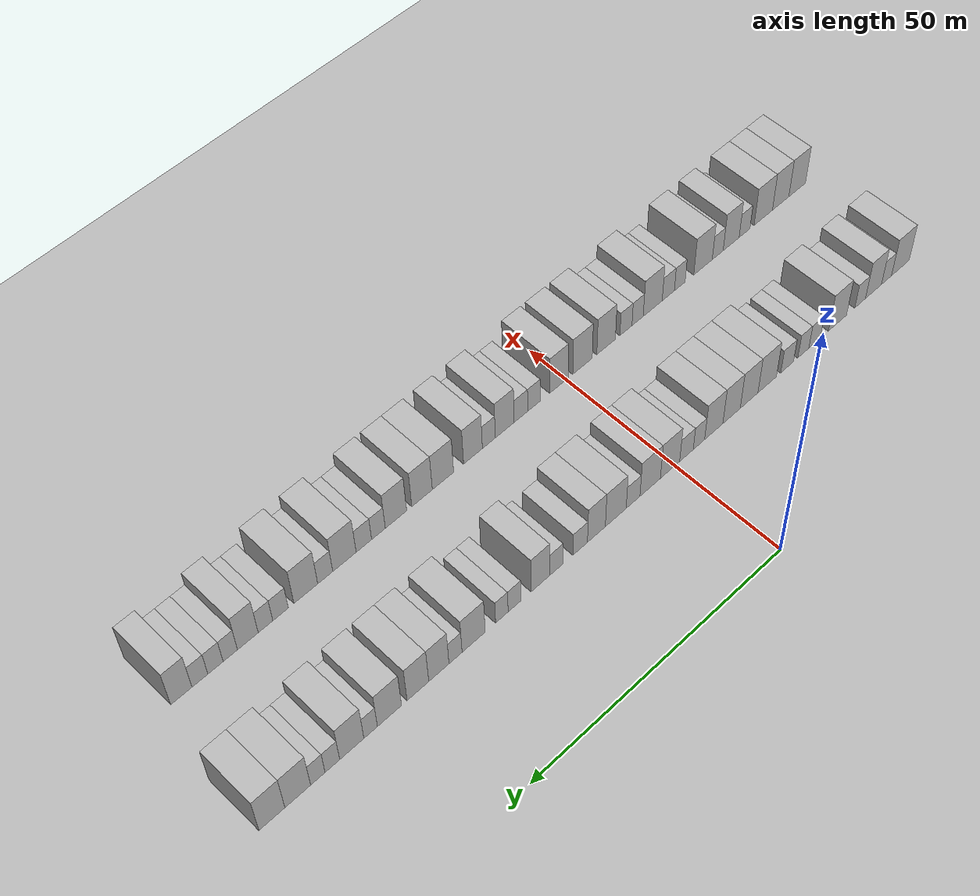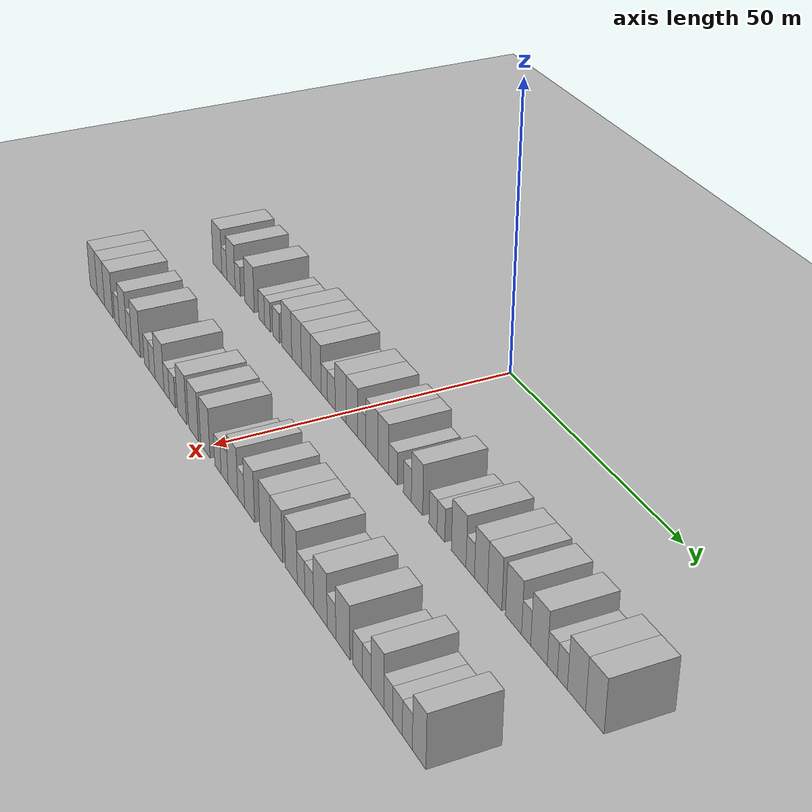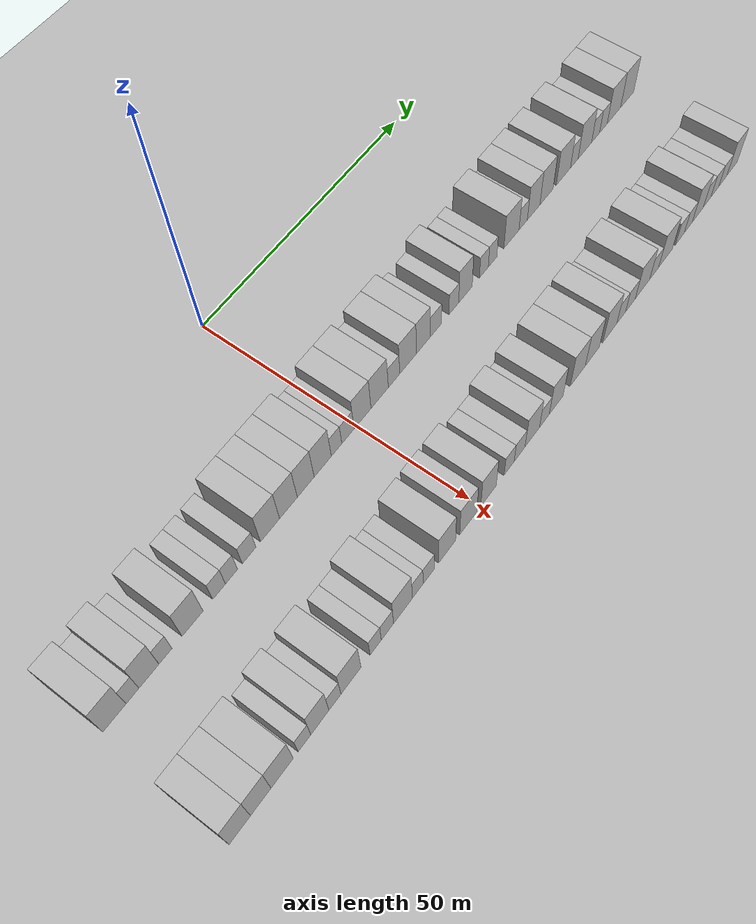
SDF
<sdf version="1.6">
 <world name="default">
  <include><name>ground_plane_1</name><uri>model://HANNAS_ground_plane</uri></include>
  <include>
   <name>ground_plane_2</name>
   <uri>model://HANNAS_ground_plane</uri>
   <pose>100 0 0  0 0 0</pose>
  </include>
  <model name="building_35">
   <static>1</static>
   <pose>25.0000 -51.8202 0 0.000000 0.000000 0.000000</pose>
   <link name="link">
    <pose>0 0 4.50 0 0 0</pose>
    <collision name="collision"><geometry><box><size>10.0000 4.3888 9.0000</size></box></geometry></collision>
    <visual name="visual">
     <cast_shadows>0</cast_shadows>
     <geometry><box><size>10.0000 4.3888 9.0000</size></box></geometry>
     <material>
      <script>
       <uri>model://HANNAS_wall/materials/scripts</uri>
       <uri>model://HANNAS_wall/materials/textures</uri>
       <name>vrc/HANNAS_wall</name>
      </script>
     </material>
    </visual>
   </link>
  </model>
  <model name="building_36">
   <static>1</static>
   <pose>25.0000 -48.3921 0 0.000000 0.000000 0.000000</pose>
   <link name="link">
    <pose>0 0 3.00 0 0 0</pose>
    <collision name="collision"><geometry><box><size>10.0000 2.4674 6.0000</size></box></geometry></collision>
    <visual name="visual">
     <cast_shadows>0</cast_shadows>
     <geometry><box><size>10.0000 2.4674 6.0000</size></box></geometry>
     <material>
      <script>
       <uri>model://HANNAS_wall/materials/scripts</uri>
       <uri>model://HANNAS_wall/materials/textures</uri>
       <name>vrc/HANNAS_wall</name>
      </script>
     </material>
    </visual>
   </link>
  </model>
  <model name="building_37">
   <static>1</static>
   <pose>25.0000 -45.2112 0 0.000000 0.000000 0.000000</pose>
   <link name="link">
    <pose>0 0 4.50 0 0 0</pose>
    <collision name="collision"><geometry><box><size>10.0000 3.8944 9.0000</size></box></geometry></collision>
    <visual name="visual">
     <cast_shadows>0</cast_shadows>
     <geometry><box><size>10.0000 3.8944 9.0000</size></box></geometry>
     <material>
      <script>
       <uri>model://HANNAS_wall/materials/scripts</uri>
       <uri>model://HANNAS_wall/materials/textures</uri>
       <name>vrc/HANNAS_wall</name>
      </script>
     </material>
    </visual>
   </link>
  </model>
  <model name="building_38">
   <static>1</static>
   <pose>25.0000 -41.9755 0 0.000000 0.000000 0.000000</pose>
   <link name="link">
    <pose>0 0 3.00 0 0 0</pose>
    <collision name="collision"><geometry><box><size>10.0000 2.5769 6.0000</size></box></geometry></collision>
    <visual name="visual">
     <cast_shadows>0</cast_shadows>
     <geometry><box><size>10.0000 2.5769 6.0000</size></box></geometry>
     <material>
      <script>
       <uri>model://HANNAS_wall/materials/scripts</uri>
       <uri>model://HANNAS_wall/materials/textures</uri>
       <name>vrc/HANNAS_wall</name>
      </script>
     </material>
    </visual>
   </link>
  </model>
  <model name="building_39">
   <static>1</static>
   <pose>25.0000 -36.5479 0 0.000000 0.000000 0.000000</pose>
   <link name="link">
    <pose>0 0 4.50 0 0 0</pose>
    <collision name="collision"><geometry><box><size>10.0000 4.2784 9.0000</size></box></geometry></collision>
    <visual name="visual">
     <cast_shadows>0</cast_shadows>
     <geometry><box><size>10.0000 4.2784 9.0000</size></box></geometry>
     <material>
      <script>
       <uri>model://HANNAS_wall/materials/scripts</uri>
       <uri>model://HANNAS_wall/materials/textures</uri>
       <name>vrc/HANNAS_wall</name>
      </script>
     </material>
    </visual>
   </link>
  </model>
  <model name="building_40">
   <static>1</static>
   <pose>25.0000 -31.0779 0 0.000000 0.000000 0.000000</pose>
   <link name="link">
    <pose>0 0 3.00 0 0 0</pose>
    <collision name="collision"><geometry><box><size>10.0000 2.6616 6.0000</size></box></geometry></collision>
    <visual name="visual">
     <cast_shadows>0</cast_shadows>
     <geometry><box><size>10.0000 2.6616 6.0000</size></box></geometry>
     <material>
      <script>
       <uri>model://HANNAS_wall/materials/scripts</uri>
       <uri>model://HANNAS_wall/materials/textures</uri>
       <name>vrc/HANNAS_wall</name>
      </script>
     </material>
    </visual>
   </link>
  </model>
  <model name="building_41">
   <static>1</static>
   <pose>25.0000 -28.4671 0 0.000000 0.000000 0.000000</pose>
   <link name="link">
    <pose>0 0 3.00 0 0 0</pose>
    <collision name="collision"><geometry><box><size>10.0000 2.5600 6.0000</size></box></geometry></collision>
    <visual name="visual">
     <cast_shadows>0</cast_shadows>
     <geometry><box><size>10.0000 2.5600 6.0000</size></box></geometry>
     <material>
      <script>
       <uri>model://HANNAS_wall/materials/scripts</uri>
       <uri>model://HANNAS_wall/materials/textures</uri>
       <name>vrc/HANNAS_wall</name>
      </script>
     </material>
    </visual>
   </link>
  </model>
  <model name="building_42">
   <static>1</static>
   <pose>25.0000 -24.7197 0 0.000000 0.000000 0.000000</pose>
   <link name="link">
    <pose>0 0 3.00 0 0 0</pose>
    <collision name="collision"><geometry><box><size>10.0000 2.9350 6.0000</size></box></geometry></collision>
    <visual name="visual">
     <cast_shadows>0</cast_shadows>
     <geometry><box><size>10.0000 2.9350 6.0000</size></box></geometry>
     <material>
      <script>
       <uri>model://HANNAS_wall/materials/scripts</uri>
       <uri>model://HANNAS_wall/materials/textures</uri>
       <name>vrc/HANNAS_wall</name>
      </script>
     </material>
    </visual>
   </link>
  </model>
  <model name="building_43">
   <static>1</static>
   <pose>25.0000 -20.1463 0 0.000000 0.000000 0.000000</pose>
   <link name="link">
    <pose>0 0 4.50 0 0 0</pose>
    <collision name="collision"><geometry><box><size>10.0000 4.2118 9.0000</size></box></geometry></collision>
    <visual name="visual">
     <cast_shadows>0</cast_shadows>
     <geometry><box><size>10.0000 4.2118 9.0000</size></box></geometry>
     <material>
      <script>
       <uri>model://HANNAS_wall/materials/scripts</uri>
       <uri>model://HANNAS_wall/materials/textures</uri>
       <name>vrc/HANNAS_wall</name>
      </script>
     </material>
    </visual>
   </link>
  </model>
  <model name="building_44">
   <static>1</static>
   <pose>25.0000 -16.0506 0 0.000000 0.000000 0.000000</pose>
   <link name="link">
    <pose>0 0 4.50 0 0 0</pose>
    <collision name="collision"><geometry><box><size>10.0000 3.9796 9.0000</size></box></geometry></collision>
    <visual name="visual">
     <cast_shadows>0</cast_shadows>
     <geometry><box><size>10.0000 3.9796 9.0000</size></box></geometry>
     <material>
      <script>
       <uri>model://HANNAS_wall/materials/scripts</uri>
       <uri>model://HANNAS_wall/materials/textures</uri>
       <name>vrc/HANNAS_wall</name>
      </script>
     </material>
    </visual>
   </link>
  </model>
  <model name="building_45">
   <static>1</static>
   <pose>25.0000 -12.1301 0 0.000000 0.000000 0.000000</pose>
   <link name="link">
    <pose>0 0 4.50 0 0 0</pose>
    <collision name="collision"><geometry><box><size>10.0000 3.8613 9.0000</size></box></geometry></collision>
    <visual name="visual">
     <cast_shadows>0</cast_shadows>
     <geometry><box><size>10.0000 3.8613 9.0000</size></box></geometry>
     <material>
      <script>
       <uri>model://HANNAS_wall/materials/scripts</uri>
       <uri>model://HANNAS_wall/materials/textures</uri>
       <name>vrc/HANNAS_wall</name>
      </script>
     </material>
    </visual>
   </link>
  </model>
  <model name="building_46">
   <static>1</static>
   <pose>25.0000 -8.1956 0 0.000000 0.000000 0.000000</pose>
   <link name="link">
    <pose>0 0 4.50 0 0 0</pose>
    <collision name="collision"><geometry><box><size>10.0000 4.0076 9.0000</size></box></geometry></collision>
    <visual name="visual">
     <cast_shadows>0</cast_shadows>
     <geometry><box><size>10.0000 4.0076 9.0000</size></box></geometry>
     <material>
      <script>
       <uri>model://HANNAS_wall/materials/scripts</uri>
       <uri>model://HANNAS_wall/materials/textures</uri>
       <name>vrc/HANNAS_wall</name>
      </script>
     </material>
    </visual>
   </link>
  </model>
  <model name="building_47">
   <static>1</static>
   <pose>25.0000 -4.9509 0 0.000000 0.000000 0.000000</pose>
   <link name="link">
    <pose>0 0 3.00 0 0 0</pose>
    <collision name="collision"><geometry><box><size>10.0000 2.4819 6.0000</size></box></geometry></collision>
    <visual name="visual">
     <cast_shadows>0</cast_shadows>
     <geometry><box><size>10.0000 2.4819 6.0000</size></box></geometry>
     <material>
      <script>
       <uri>model://HANNAS_wall/materials/scripts</uri>
       <uri>model://HANNAS_wall/materials/textures</uri>
       <name>vrc/HANNAS_wall</name>
      </script>
     </material>
    </visual>
   </link>
  </model>
  <model name="building_48">
   <static>1</static>
   <pose>25.0000 -2.2434 0 0.000000 0.000000 0.000000</pose>
   <link name="link">
    <pose>0 0 3.00 0 0 0</pose>
    <collision name="collision"><geometry><box><size>10.0000 2.9330 6.0000</size></box></geometry></collision>
    <visual name="visual">
     <cast_shadows>0</cast_shadows>
     <geometry><box><size>10.0000 2.9330 6.0000</size></box></geometry>
     <material>
      <script>
       <uri>model://HANNAS_wall/materials/scripts</uri>
       <uri>model://HANNAS_wall/materials/textures</uri>
       <name>vrc/HANNAS_wall</name>
      </script>
     </material>
    </visual>
   </link>
  </model>
  <model name="building_49">
   <static>1</static>
   <pose>25.0000 1.2907 0 0.000000 0.000000 0.000000</pose>
   <link name="link">
    <pose>0 0 4.50 0 0 0</pose>
    <collision name="collision"><geometry><box><size>10.0000 4.1353 9.0000</size></box></geometry></collision>
    <visual name="visual">
     <cast_shadows>0</cast_shadows>
     <geometry><box><size>10.0000 4.1353 9.0000</size></box></geometry>
     <material>
      <script>
       <uri>model://HANNAS_wall/materials/scripts</uri>
       <uri>model://HANNAS_wall/materials/textures</uri>
       <name>vrc/HANNAS_wall</name>
      </script>
     </material>
    </visual>
   </link>
  </model>
  <model name="building_50">
   <static>1</static>
   <pose>25.0000 5.5129 0 0.000000 0.000000 0.000000</pose>
   <link name="link">
    <pose>0 0 4.50 0 0 0</pose>
    <collision name="collision"><geometry><box><size>10.0000 4.3091 9.0000</size></box></geometry></collision>
    <visual name="visual">
     <cast_shadows>0</cast_shadows>
     <geometry><box><size>10.0000 4.3091 9.0000</size></box></geometry>
     <material>
      <script>
       <uri>model://HANNAS_wall/materials/scripts</uri>
       <uri>model://HANNAS_wall/materials/textures</uri>
       <name>vrc/HANNAS_wall</name>
      </script>
     </material>
    </visual>
   </link>
  </model>
  <model name="building_51">
   <static>1</static>
   <pose>25.0000 9.1079 0 0.000000 0.000000 0.000000</pose>
   <link name="link">
    <pose>0 0 3.00 0 0 0</pose>
    <collision name="collision"><geometry><box><size>10.0000 2.8809 6.0000</size></box></geometry></collision>
    <visual name="visual">
     <cast_shadows>0</cast_shadows>
     <geometry><box><size>10.0000 2.8809 6.0000</size></box></geometry>
     <material>
      <script>
       <uri>model://HANNAS_wall/materials/scripts</uri>
       <uri>model://HANNAS_wall/materials/textures</uri>
       <name>vrc/HANNAS_wall</name>
      </script>
     </material>
    </visual>
   </link>
  </model>
  <model name="building_52">
   <static>1</static>
   <pose>25.0000 12.6983 0 0.000000 0.000000 0.000000</pose>
   <link name="link">
    <pose>0 0 4.50 0 0 0</pose>
    <collision name="collision"><geometry><box><size>10.0000 4.3001 9.0000</size></box></geometry></collision>
    <visual name="visual">
     <cast_shadows>0</cast_shadows>
     <geometry><box><size>10.0000 4.3001 9.0000</size></box></geometry>
     <material>
      <script>
       <uri>model://HANNAS_wall/materials/scripts</uri>
       <uri>model://HANNAS_wall/materials/textures</uri>
       <name>vrc/HANNAS_wall</name>
      </script>
     </material>
    </visual>
   </link>
  </model>
  <model name="building_53">
   <static>1</static>
   <pose>25.0000 16.6781 0 0.000000 0.000000 0.000000</pose>
   <link name="link">
    <pose>0 0 4.50 0 0 0</pose>
    <collision name="collision"><geometry><box><size>10.0000 3.6595 9.0000</size></box></geometry></collision>
    <visual name="visual">
     <cast_shadows>0</cast_shadows>
     <geometry><box><size>10.0000 3.6595 9.0000</size></box></geometry>
     <material>
      <script>
       <uri>model://HANNAS_wall/materials/scripts</uri>
       <uri>model://HANNAS_wall/materials/textures</uri>
       <name>vrc/HANNAS_wall</name>
      </script>
     </material>
    </visual>
   </link>
  </model>
  <model name="building_54">
   <static>1</static>
   <pose>25.0000 19.9686 0 0.000000 0.000000 0.000000</pose>
   <link name="link">
    <pose>0 0 3.00 0 0 0</pose>
    <collision name="collision"><geometry><box><size>10.0000 2.9214 6.0000</size></box></geometry></collision>
    <visual name="visual">
     <cast_shadows>0</cast_shadows>
     <geometry><box><size>10.0000 2.9214 6.0000</size></box></geometry>
     <material>
      <script>
       <uri>model://HANNAS_wall/materials/scripts</uri>
       <uri>model://HANNAS_wall/materials/textures</uri>
       <name>vrc/HANNAS_wall</name>
      </script>
     </material>
    </visual>
   </link>
  </model>
  <model name="building_55">
   <static>1</static>
   <pose>25.0000 24.7430 0 0.000000 0.000000 0.000000</pose>
   <link name="link">
    <pose>0 0 3.00 0 0 0</pose>
    <collision name="collision"><geometry><box><size>10.0000 2.6274 6.0000</size></box></geometry></collision>
    <visual name="visual">
     <cast_shadows>0</cast_shadows>
     <geometry><box><size>10.0000 2.6274 6.0000</size></box></geometry>
     <material>
      <script>
       <uri>model://HANNAS_wall/materials/scripts</uri>
       <uri>model://HANNAS_wall/materials/textures</uri>
       <name>vrc/HANNAS_wall</name>
      </script>
     </material>
    </visual>
   </link>
  </model>
  <model name="building_56">
   <static>1</static>
   <pose>25.0000 27.9003 0 0.000000 0.000000 0.000000</pose>
   <link name="link">
    <pose>0 0 4.50 0 0 0</pose>
    <collision name="collision"><geometry><box><size>10.0000 3.6870 9.0000</size></box></geometry></collision>
    <visual name="visual">
     <cast_shadows>0</cast_shadows>
     <geometry><box><size>10.0000 3.6870 9.0000</size></box></geometry>
     <material>
      <script>
       <uri>model://HANNAS_wall/materials/scripts</uri>
       <uri>model://HANNAS_wall/materials/textures</uri>
       <name>vrc/HANNAS_wall</name>
      </script>
     </material>
    </visual>
   </link>
  </model>
  <model name="building_57">
   <static>1</static>
   <pose>25.0000 32.9931 0 0.000000 0.000000 0.000000</pose>
   <link name="link">
    <pose>0 0 3.00 0 0 0</pose>
    <collision name="collision"><geometry><box><size>10.0000 2.4987 6.0000</size></box></geometry></collision>
    <visual name="visual">
     <cast_shadows>0</cast_shadows>
     <geometry><box><size>10.0000 2.4987 6.0000</size></box></geometry>
     <material>
      <script>
       <uri>model://HANNAS_wall/materials/scripts</uri>
       <uri>model://HANNAS_wall/materials/textures</uri>
       <name>vrc/HANNAS_wall</name>
      </script>
     </material>
    </visual>
   </link>
  </model>
  <model name="building_58">
   <static>1</static>
   <pose>25.0000 35.4506 0 0.000000 0.000000 0.000000</pose>
   <link name="link">
    <pose>0 0 3.00 0 0 0</pose>
    <collision name="collision"><geometry><box><size>10.0000 2.4164 6.0000</size></box></geometry></collision>
    <visual name="visual">
     <cast_shadows>0</cast_shadows>
     <geometry><box><size>10.0000 2.4164 6.0000</size></box></geometry>
     <material>
      <script>
       <uri>model://HANNAS_wall/materials/scripts</uri>
       <uri>model://HANNAS_wall/materials/textures</uri>
       <name>vrc/HANNAS_wall</name>
      </script>
     </material>
    </visual>
   </link>
  </model>
  <model name="building_59">
   <static>1</static>
   <pose>25.0000 40.8483 0 0.000000 0.000000 0.000000</pose>
   <link name="link">
    <pose>0 0 4.50 0 0 0</pose>
    <collision name="collision"><geometry><box><size>10.0000 4.3790 9.0000</size></box></geometry></collision>
    <visual name="visual">
     <cast_shadows>0</cast_shadows>
     <geometry><box><size>10.0000 4.3790 9.0000</size></box></geometry>
     <material>
      <script>
       <uri>model://HANNAS_wall/materials/scripts</uri>
       <uri>model://HANNAS_wall/materials/textures</uri>
       <name>vrc/HANNAS_wall</name>
      </script>
     </material>
    </visual>
   </link>
  </model>
  <model name="building_60">
   <static>1</static>
   <pose>25.0000 44.2669 0 0.000000 0.000000 0.000000</pose>
   <link name="link">
    <pose>0 0 3.00 0 0 0</pose>
    <collision name="collision"><geometry><box><size>10.0000 2.4583 6.0000</size></box></geometry></collision>
    <visual name="visual">
     <cast_shadows>0</cast_shadows>
     <geometry><box><size>10.0000 2.4583 6.0000</size></box></geometry>
     <material>
      <script>
       <uri>model://HANNAS_wall/materials/scripts</uri>
       <uri>model://HANNAS_wall/materials/textures</uri>
       <name>vrc/HANNAS_wall</name>
      </script>
     </material>
    </visual>
   </link>
  </model>
  <model name="building_61">
   <static>1</static>
   <pose>25.0000 47.3763 0 0.000000 0.000000 0.000000</pose>
   <link name="link">
    <pose>0 0 4.50 0 0 0</pose>
    <collision name="collision"><geometry><box><size>10.0000 3.7605 9.0000</size></box></geometry></collision>
    <visual name="visual">
     <cast_shadows>0</cast_shadows>
     <geometry><box><size>10.0000 3.7605 9.0000</size></box></geometry>
     <material>
      <script>
       <uri>model://HANNAS_wall/materials/scripts</uri>
       <uri>model://HANNAS_wall/materials/textures</uri>
       <name>vrc/HANNAS_wall</name>
      </script>
     </material>
    </visual>
   </link>
  </model>
  <model name="building_62">
   <static>1</static>
   <pose>25.0000 51.2478 0 0.000000 0.000000 0.000000</pose>
   <link name="link">
    <pose>0 0 4.50 0 0 0</pose>
    <collision name="collision"><geometry><box><size>10.0000 3.9825 9.0000</size></box></geometry></collision>
    <visual name="visual">
     <cast_shadows>0</cast_shadows>
     <geometry><box><size>10.0000 3.9825 9.0000</size></box></geometry>
     <material>
      <script>
       <uri>model://HANNAS_wall/materials/scripts</uri>
       <uri>model://HANNAS_wall/materials/textures</uri>
       <name>vrc/HANNAS_wall</name>
      </script>
     </material>
    </visual>
   </link>
  </model>
  <model name="building_63">
   <static>1</static>
   <pose>25.0000 56.4181 0 0.000000 0.000000 0.000000</pose>
   <link name="link">
    <pose>0 0 4.50 0 0 0</pose>
    <collision name="collision"><geometry><box><size>10.0000 4.3580 9.0000</size></box></geometry></collision>
    <visual name="visual">
     <cast_shadows>0</cast_shadows>
     <geometry><box><size>10.0000 4.3580 9.0000</size></box></geometry>
     <material>
      <script>
       <uri>model://HANNAS_wall/materials/scripts</uri>
       <uri>model://HANNAS_wall/materials/textures</uri>
       <name>vrc/HANNAS_wall</name>
      </script>
     </material>
    </visual>
   </link>
  </model>
  <model name="building_64">
   <static>1</static>
   <pose>25.0000 59.8069 0 0.000000 0.000000 0.000000</pose>
   <link name="link">
    <pose>0 0 3.00 0 0 0</pose>
    <collision name="collision"><geometry><box><size>10.0000 2.4197 6.0000</size></box></geometry></collision>
    <visual name="visual">
     <cast_shadows>0</cast_shadows>
     <geometry><box><size>10.0000 2.4197 6.0000</size></box></geometry>
     <material>
      <script>
       <uri>model://HANNAS_wall/materials/scripts</uri>
       <uri>model://HANNAS_wall/materials/textures</uri>
       <name>vrc/HANNAS_wall</name>
      </script>
     </material>
    </visual>
   </link>
  </model>
  <model name="building_65">
   <static>1</static>
   <pose>25.0000 63.1576 0 0.000000 0.000000 0.000000</pose>
   <link name="link">
    <pose>0 0 4.50 0 0 0</pose>
    <collision name="collision"><geometry><box><size>10.0000 4.2817 9.0000</size></box></geometry></collision>
    <visual name="visual">
     <cast_shadows>0</cast_shadows>
     <geometry><box><size>10.0000 4.2817 9.0000</size></box></geometry>
     <material>
      <script>
       <uri>model://HANNAS_wall/materials/scripts</uri>
       <uri>model://HANNAS_wall/materials/textures</uri>
       <name>vrc/HANNAS_wall</name>
      </script>
     </material>
    </visual>
   </link>
  </model>
  <model name="building_66">
   <static>1</static>
   <pose>25.0000 66.5756 0 0.000000 0.000000 0.000000</pose>
   <link name="link">
    <pose>0 0 3.00 0 0 0</pose>
    <collision name="collision"><geometry><box><size>10.0000 2.5543 6.0000</size></box></geometry></collision>
    <visual name="visual">
     <cast_shadows>0</cast_shadows>
     <geometry><box><size>10.0000 2.5543 6.0000</size></box></geometry>
     <material>
      <script>
       <uri>model://HANNAS_wall/materials/scripts</uri>
       <uri>model://HANNAS_wall/materials/textures</uri>
       <name>vrc/HANNAS_wall</name>
      </script>
     </material>
    </visual>
   </link>
  </model>
  <model name="building_67">
   <static>1</static>
   <pose>25.0000 69.1060 0 0.000000 0.000000 0.000000</pose>
   <link name="link">
    <pose>0 0 3.00 0 0 0</pose>
    <collision name="collision"><geometry><box><size>10.0000 2.5065 6.0000</size></box></geometry></collision>
    <visual name="visual">
     <cast_shadows>0</cast_shadows>
     <geometry><box><size>10.0000 2.5065 6.0000</size></box></geometry>
     <material>
      <script>
       <uri>model://HANNAS_wall/materials/scripts</uri>
       <uri>model://HANNAS_wall/materials/textures</uri>
       <name>vrc/HANNAS_wall</name>
      </script>
     </material>
    </visual>
   </link>
  </model>
  <model name="building_68">
   <static>1</static>
   <pose>25.0000 72.5663 0 0.000000 0.000000 0.000000</pose>
   <link name="link">
    <pose>0 0 4.50 0 0 0</pose>
    <collision name="collision"><geometry><box><size>10.0000 4.4142 9.0000</size></box></geometry></collision>
    <visual name="visual">
     <cast_shadows>0</cast_shadows>
     <geometry><box><size>10.0000 4.4142 9.0000</size></box></geometry>
     <material>
      <script>
       <uri>model://HANNAS_wall/materials/scripts</uri>
       <uri>model://HANNAS_wall/materials/textures</uri>
       <name>vrc/HANNAS_wall</name>
      </script>
     </material>
    </visual>
   </link>
  </model>
  <model name="building_69">
   <static>1</static>
   <pose>25.0000 76.9699 0 0.000000 0.000000 0.000000</pose>
   <link name="link">
    <pose>0 0 4.50 0 0 0</pose>
    <collision name="collision"><geometry><box><size>10.0000 4.3930 9.0000</size></box></geometry></collision>
    <visual name="visual">
     <cast_shadows>0</cast_shadows>
     <geometry><box><size>10.0000 4.3930 9.0000</size></box></geometry>
     <material>
      <script>
       <uri>model://HANNAS_wall/materials/scripts</uri>
       <uri>model://HANNAS_wall/materials/textures</uri>
       <name>vrc/HANNAS_wall</name>
      </script>
     </material>
    </visual>
   </link>
  </model>
  <model name="building_141">
   <static>1</static>
   <pose>47.0000 -52.9447 0 0.000000 0.000000 0.000000</pose>
   <link name="link">
    <pose>0 0 4.50 0 0 0</pose>
    <collision name="collision"><geometry><box><size>10.0000 4.1291 9.0000</size></box></geometry></collision>
    <visual name="visual">
     <cast_shadows>0</cast_shadows>
     <geometry><box><size>10.0000 4.1291 9.0000</size></box></geometry>
     <material>
      <script>
       <uri>model://HANNAS_wall/materials/scripts</uri>
       <uri>model://HANNAS_wall/materials/textures</uri>
       <name>vrc/HANNAS_wall</name>
      </script>
     </material>
    </visual>
   </link>
  </model>
  <model name="building_142">
   <static>1</static>
   <pose>47.0000 -48.8727 0 0.000000 0.000000 0.000000</pose>
   <link name="link">
    <pose>0 0 4.50 0 0 0</pose>
    <collision name="collision"><geometry><box><size>10.0000 4.0148 9.0000</size></box></geometry></collision>
    <visual name="visual">
     <cast_shadows>0</cast_shadows>
     <geometry><box><size>10.0000 4.0148 9.0000</size></box></geometry>
     <material>
      <script>
       <uri>model://HANNAS_wall/materials/scripts</uri>
       <uri>model://HANNAS_wall/materials/textures</uri>
       <name>vrc/HANNAS_wall</name>
      </script>
     </material>
    </visual>
   </link>
  </model>
  <model name="building_143">
   <static>1</static>
   <pose>47.0000 -44.6449 0 0.000000 0.000000 0.000000</pose>
   <link name="link">
    <pose>0 0 4.50 0 0 0</pose>
    <collision name="collision"><geometry><box><size>10.0000 4.4408 9.0000</size></box></geometry></collision>
    <visual name="visual">
     <cast_shadows>0</cast_shadows>
     <geometry><box><size>10.0000 4.4408 9.0000</size></box></geometry>
     <material>
      <script>
       <uri>model://HANNAS_wall/materials/scripts</uri>
       <uri>model://HANNAS_wall/materials/textures</uri>
       <name>vrc/HANNAS_wall</name>
      </script>
     </material>
    </visual>
   </link>
  </model>
  <model name="building_144">
   <static>1</static>
   <pose>47.0000 -40.1276 0 0.000000 0.000000 0.000000</pose>
   <link name="link">
    <pose>0 0 3.00 0 0 0</pose>
    <collision name="collision"><geometry><box><size>10.0000 2.5938 6.0000</size></box></geometry></collision>
    <visual name="visual">
     <cast_shadows>0</cast_shadows>
     <geometry><box><size>10.0000 2.5938 6.0000</size></box></geometry>
     <material>
      <script>
       <uri>model://HANNAS_wall/materials/scripts</uri>
       <uri>model://HANNAS_wall/materials/textures</uri>
       <name>vrc/HANNAS_wall</name>
      </script>
     </material>
    </visual>
   </link>
  </model>
  <model name="building_145">
   <static>1</static>
   <pose>47.0000 -36.9353 0 0.000000 0.000000 0.000000</pose>
   <link name="link">
    <pose>0 0 4.50 0 0 0</pose>
    <collision name="collision"><geometry><box><size>10.0000 3.7909 9.0000</size></box></geometry></collision>
    <visual name="visual">
     <cast_shadows>0</cast_shadows>
     <geometry><box><size>10.0000 3.7909 9.0000</size></box></geometry>
     <material>
      <script>
       <uri>model://HANNAS_wall/materials/scripts</uri>
       <uri>model://HANNAS_wall/materials/textures</uri>
       <name>vrc/HANNAS_wall</name>
      </script>
     </material>
    </visual>
   </link>
  </model>
  <model name="building_146">
   <static>1</static>
   <pose>47.0000 -33.7559 0 0.000000 0.000000 0.000000</pose>
   <link name="link">
    <pose>0 0 3.00 0 0 0</pose>
    <collision name="collision"><geometry><box><size>10.0000 2.5678 6.0000</size></box></geometry></collision>
    <visual name="visual">
     <cast_shadows>0</cast_shadows>
     <geometry><box><size>10.0000 2.5678 6.0000</size></box></geometry>
     <material>
      <script>
       <uri>model://HANNAS_wall/materials/scripts</uri>
       <uri>model://HANNAS_wall/materials/textures</uri>
       <name>vrc/HANNAS_wall</name>
      </script>
     </material>
    </visual>
   </link>
  </model>
  <model name="building_147">
   <static>1</static>
   <pose>47.0000 -30.3188 0 0.000000 0.000000 0.000000</pose>
   <link name="link">
    <pose>0 0 4.50 0 0 0</pose>
    <collision name="collision"><geometry><box><size>10.0000 4.3065 9.0000</size></box></geometry></collision>
    <visual name="visual">
     <cast_shadows>0</cast_shadows>
     <geometry><box><size>10.0000 4.3065 9.0000</size></box></geometry>
     <material>
      <script>
       <uri>model://HANNAS_wall/materials/scripts</uri>
       <uri>model://HANNAS_wall/materials/textures</uri>
       <name>vrc/HANNAS_wall</name>
      </script>
     </material>
    </visual>
   </link>
  </model>
  <model name="building_148">
   <static>1</static>
   <pose>47.0000 -24.9301 0 0.000000 0.000000 0.000000</pose>
   <link name="link">
    <pose>0 0 3.00 0 0 0</pose>
    <collision name="collision"><geometry><box><size>10.0000 2.4707 6.0000</size></box></geometry></collision>
    <visual name="visual">
     <cast_shadows>0</cast_shadows>
     <geometry><box><size>10.0000 2.4707 6.0000</size></box></geometry>
     <material>
      <script>
       <uri>model://HANNAS_wall/materials/scripts</uri>
       <uri>model://HANNAS_wall/materials/textures</uri>
       <name>vrc/HANNAS_wall</name>
      </script>
     </material>
    </visual>
   </link>
  </model>
  <model name="building_149">
   <static>1</static>
   <pose>47.0000 -22.3073 0 0.000000 0.000000 0.000000</pose>
   <link name="link">
    <pose>0 0 3.00 0 0 0</pose>
    <collision name="collision"><geometry><box><size>10.0000 2.7750 6.0000</size></box></geometry></collision>
    <visual name="visual">
     <cast_shadows>0</cast_shadows>
     <geometry><box><size>10.0000 2.7750 6.0000</size></box></geometry>
     <material>
      <script>
       <uri>model://HANNAS_wall/materials/scripts</uri>
       <uri>model://HANNAS_wall/materials/textures</uri>
       <name>vrc/HANNAS_wall</name>
      </script>
     </material>
    </visual>
   </link>
  </model>
  <model name="building_150">
   <static>1</static>
   <pose>47.0000 -18.7735 0 0.000000 0.000000 0.000000</pose>
   <link name="link">
    <pose>0 0 4.50 0 0 0</pose>
    <collision name="collision"><geometry><box><size>10.0000 4.2926 9.0000</size></box></geometry></collision>
    <visual name="visual">
     <cast_shadows>0</cast_shadows>
     <geometry><box><size>10.0000 4.2926 9.0000</size></box></geometry>
     <material>
      <script>
       <uri>model://HANNAS_wall/materials/scripts</uri>
       <uri>model://HANNAS_wall/materials/textures</uri>
       <name>vrc/HANNAS_wall</name>
      </script>
     </material>
    </visual>
   </link>
  </model>
  <model name="building_151">
   <static>1</static>
   <pose>47.0000 -15.3705 0 0.000000 0.000000 0.000000</pose>
   <link name="link">
    <pose>0 0 3.00 0 0 0</pose>
    <collision name="collision"><geometry><box><size>10.0000 2.5134 6.0000</size></box></geometry></collision>
    <visual name="visual">
     <cast_shadows>0</cast_shadows>
     <geometry><box><size>10.0000 2.5134 6.0000</size></box></geometry>
     <material>
      <script>
       <uri>model://HANNAS_wall/materials/scripts</uri>
       <uri>model://HANNAS_wall/materials/textures</uri>
       <name>vrc/HANNAS_wall</name>
      </script>
     </material>
    </visual>
   </link>
  </model>
  <model name="building_152">
   <static>1</static>
   <pose>47.0000 -12.7776 0 0.000000 0.000000 0.000000</pose>
   <link name="link">
    <pose>0 0 3.00 0 0 0</pose>
    <collision name="collision"><geometry><box><size>10.0000 2.6724 6.0000</size></box></geometry></collision>
    <visual name="visual">
     <cast_shadows>0</cast_shadows>
     <geometry><box><size>10.0000 2.6724 6.0000</size></box></geometry>
     <material>
      <script>
       <uri>model://HANNAS_wall/materials/scripts</uri>
       <uri>model://HANNAS_wall/materials/textures</uri>
       <name>vrc/HANNAS_wall</name>
      </script>
     </material>
    </visual>
   </link>
  </model>
  <model name="building_153">
   <static>1</static>
   <pose>47.0000 -8.4035 0 0.000000 0.000000 0.000000</pose>
   <link name="link">
    <pose>0 0 4.50 0 0 0</pose>
    <collision name="collision"><geometry><box><size>10.0000 4.0758 9.0000</size></box></geometry></collision>
    <visual name="visual">
     <cast_shadows>0</cast_shadows>
     <geometry><box><size>10.0000 4.0758 9.0000</size></box></geometry>
     <material>
      <script>
       <uri>model://HANNAS_wall/materials/scripts</uri>
       <uri>model://HANNAS_wall/materials/textures</uri>
       <name>vrc/HANNAS_wall</name>
      </script>
     </material>
    </visual>
   </link>
  </model>
  <model name="building_154">
   <static>1</static>
   <pose>47.0000 -3.2656 0 0.000000 0.000000 0.000000</pose>
   <link name="link">
    <pose>0 0 4.50 0 0 0</pose>
    <collision name="collision"><geometry><box><size>10.0000 4.1999 9.0000</size></box></geometry></collision>
    <visual name="visual">
     <cast_shadows>0</cast_shadows>
     <geometry><box><size>10.0000 4.1999 9.0000</size></box></geometry>
     <material>
      <script>
       <uri>model://HANNAS_wall/materials/scripts</uri>
       <uri>model://HANNAS_wall/materials/textures</uri>
       <name>vrc/HANNAS_wall</name>
      </script>
     </material>
    </visual>
   </link>
  </model>
  <model name="building_155">
   <static>1</static>
   <pose>47.0000 1.7955 0 0.000000 0.000000 0.000000</pose>
   <link name="link">
    <pose>0 0 4.50 0 0 0</pose>
    <collision name="collision"><geometry><box><size>10.0000 3.9222 9.0000</size></box></geometry></collision>
    <visual name="visual">
     <cast_shadows>0</cast_shadows>
     <geometry><box><size>10.0000 3.9222 9.0000</size></box></geometry>
     <material>
      <script>
       <uri>model://HANNAS_wall/materials/scripts</uri>
       <uri>model://HANNAS_wall/materials/textures</uri>
       <name>vrc/HANNAS_wall</name>
      </script>
     </material>
    </visual>
   </link>
  </model>
  <model name="building_156">
   <static>1</static>
   <pose>47.0000 7.0728 0 0.000000 0.000000 0.000000</pose>
   <link name="link">
    <pose>0 0 3.00 0 0 0</pose>
    <collision name="collision"><geometry><box><size>10.0000 2.6325 6.0000</size></box></geometry></collision>
    <visual name="visual">
     <cast_shadows>0</cast_shadows>
     <geometry><box><size>10.0000 2.6325 6.0000</size></box></geometry>
     <material>
      <script>
       <uri>model://HANNAS_wall/materials/scripts</uri>
       <uri>model://HANNAS_wall/materials/textures</uri>
       <name>vrc/HANNAS_wall</name>
      </script>
     </material>
    </visual>
   </link>
  </model>
  <model name="building_157">
   <static>1</static>
   <pose>47.0000 9.8041 0 0.000000 0.000000 0.000000</pose>
   <link name="link">
    <pose>0 0 3.00 0 0 0</pose>
    <collision name="collision"><geometry><box><size>10.0000 2.8301 6.0000</size></box></geometry></collision>
    <visual name="visual">
     <cast_shadows>0</cast_shadows>
     <geometry><box><size>10.0000 2.8301 6.0000</size></box></geometry>
     <material>
      <script>
       <uri>model://HANNAS_wall/materials/scripts</uri>
       <uri>model://HANNAS_wall/materials/textures</uri>
       <name>vrc/HANNAS_wall</name>
      </script>
     </material>
    </visual>
   </link>
  </model>
  <model name="building_158">
   <static>1</static>
   <pose>47.0000 13.1570 0 0.000000 0.000000 0.000000</pose>
   <link name="link">
    <pose>0 0 4.50 0 0 0</pose>
    <collision name="collision"><geometry><box><size>10.0000 3.8757 9.0000</size></box></geometry></collision>
    <visual name="visual">
     <cast_shadows>0</cast_shadows>
     <geometry><box><size>10.0000 3.8757 9.0000</size></box></geometry>
     <material>
      <script>
       <uri>model://HANNAS_wall/materials/scripts</uri>
       <uri>model://HANNAS_wall/materials/textures</uri>
       <name>vrc/HANNAS_wall</name>
      </script>
     </material>
    </visual>
   </link>
  </model>
  <model name="building_159">
   <static>1</static>
   <pose>47.0000 16.4181 0 0.000000 0.000000 0.000000</pose>
   <link name="link">
    <pose>0 0 3.00 0 0 0</pose>
    <collision name="collision"><geometry><box><size>10.0000 2.6464 6.0000</size></box></geometry></collision>
    <visual name="visual">
     <cast_shadows>0</cast_shadows>
     <geometry><box><size>10.0000 2.6464 6.0000</size></box></geometry>
     <material>
      <script>
       <uri>model://HANNAS_wall/materials/scripts</uri>
       <uri>model://HANNAS_wall/materials/textures</uri>
       <name>vrc/HANNAS_wall</name>
      </script>
     </material>
    </visual>
   </link>
  </model>
  <model name="building_160">
   <static>1</static>
   <pose>47.0000 19.6465 0 0.000000 0.000000 0.000000</pose>
   <link name="link">
    <pose>0 0 4.50 0 0 0</pose>
    <collision name="collision"><geometry><box><size>10.0000 3.8105 9.0000</size></box></geometry></collision>
    <visual name="visual">
     <cast_shadows>0</cast_shadows>
     <geometry><box><size>10.0000 3.8105 9.0000</size></box></geometry>
     <material>
      <script>
       <uri>model://HANNAS_wall/materials/scripts</uri>
       <uri>model://HANNAS_wall/materials/textures</uri>
       <name>vrc/HANNAS_wall</name>
      </script>
     </material>
    </visual>
   </link>
  </model>
  <model name="building_161">
   <static>1</static>
   <pose>47.0000 25.6698 0 0.000000 0.000000 0.000000</pose>
   <link name="link">
    <pose>0 0 4.50 0 0 0</pose>
    <collision name="collision"><geometry><box><size>10.0000 4.2360 9.0000</size></box></geometry></collision>
    <visual name="visual">
     <cast_shadows>0</cast_shadows>
     <geometry><box><size>10.0000 4.2360 9.0000</size></box></geometry>
     <material>
      <script>
       <uri>model://HANNAS_wall/materials/scripts</uri>
       <uri>model://HANNAS_wall/materials/textures</uri>
       <name>vrc/HANNAS_wall</name>
      </script>
     </material>
    </visual>
   </link>
  </model>
  <model name="building_162">
   <static>1</static>
   <pose>47.0000 29.8043 0 0.000000 0.000000 0.000000</pose>
   <link name="link">
    <pose>0 0 4.50 0 0 0</pose>
    <collision name="collision"><geometry><box><size>10.0000 4.0331 9.0000</size></box></geometry></collision>
    <visual name="visual">
     <cast_shadows>0</cast_shadows>
     <geometry><box><size>10.0000 4.0331 9.0000</size></box></geometry>
     <material>
      <script>
       <uri>model://HANNAS_wall/materials/scripts</uri>
       <uri>model://HANNAS_wall/materials/textures</uri>
       <name>vrc/HANNAS_wall</name>
      </script>
     </material>
    </visual>
   </link>
  </model>
  <model name="building_163">
   <static>1</static>
   <pose>47.0000 34.8874 0 0.000000 0.000000 0.000000</pose>
   <link name="link">
    <pose>0 0 4.50 0 0 0</pose>
    <collision name="collision"><geometry><box><size>10.0000 4.1330 9.0000</size></box></geometry></collision>
    <visual name="visual">
     <cast_shadows>0</cast_shadows>
     <geometry><box><size>10.0000 4.1330 9.0000</size></box></geometry>
     <material>
      <script>
       <uri>model://HANNAS_wall/materials/scripts</uri>
       <uri>model://HANNAS_wall/materials/textures</uri>
       <name>vrc/HANNAS_wall</name>
      </script>
     </material>
    </visual>
   </link>
  </model>
  <model name="building_164">
   <static>1</static>
   <pose>47.0000 38.2609 0 0.000000 0.000000 0.000000</pose>
   <link name="link">
    <pose>0 0 3.00 0 0 0</pose>
    <collision name="collision"><geometry><box><size>10.0000 2.6140 6.0000</size></box></geometry></collision>
    <visual name="visual">
     <cast_shadows>0</cast_shadows>
     <geometry><box><size>10.0000 2.6140 6.0000</size></box></geometry>
     <material>
      <script>
       <uri>model://HANNAS_wall/materials/scripts</uri>
       <uri>model://HANNAS_wall/materials/textures</uri>
       <name>vrc/HANNAS_wall</name>
      </script>
     </material>
    </visual>
   </link>
  </model>
  <model name="building_165">
   <static>1</static>
   <pose>47.0000 41.0389 0 0.000000 0.000000 0.000000</pose>
   <link name="link">
    <pose>0 0 3.00 0 0 0</pose>
    <collision name="collision"><geometry><box><size>10.0000 2.9420 6.0000</size></box></geometry></collision>
    <visual name="visual">
     <cast_shadows>0</cast_shadows>
     <geometry><box><size>10.0000 2.9420 6.0000</size></box></geometry>
     <material>
      <script>
       <uri>model://HANNAS_wall/materials/scripts</uri>
       <uri>model://HANNAS_wall/materials/textures</uri>
       <name>vrc/HANNAS_wall</name>
      </script>
     </material>
    </visual>
   </link>
  </model>
  <model name="building_166">
   <static>1</static>
   <pose>47.0000 44.7114 0 0.000000 0.000000 0.000000</pose>
   <link name="link">
    <pose>0 0 4.50 0 0 0</pose>
    <collision name="collision"><geometry><box><size>10.0000 4.4029 9.0000</size></box></geometry></collision>
    <visual name="visual">
     <cast_shadows>0</cast_shadows>
     <geometry><box><size>10.0000 4.4029 9.0000</size></box></geometry>
     <material>
      <script>
       <uri>model://HANNAS_wall/materials/scripts</uri>
       <uri>model://HANNAS_wall/materials/textures</uri>
       <name>vrc/HANNAS_wall</name>
      </script>
     </material>
    </visual>
   </link>
  </model>
  <model name="building_167">
   <static>1</static>
   <pose>47.0000 48.3075 0 0.000000 0.000000 0.000000</pose>
   <link name="link">
    <pose>0 0 3.00 0 0 0</pose>
    <collision name="collision"><geometry><box><size>10.0000 2.7893 6.0000</size></box></geometry></collision>
    <visual name="visual">
     <cast_shadows>0</cast_shadows>
     <geometry><box><size>10.0000 2.7893 6.0000</size></box></geometry>
     <material>
      <script>
       <uri>model://HANNAS_wall/materials/scripts</uri>
       <uri>model://HANNAS_wall/materials/textures</uri>
       <name>vrc/HANNAS_wall</name>
      </script>
     </material>
    </visual>
   </link>
  </model>
  <model name="building_168">
   <static>1</static>
   <pose>47.0000 51.8959 0 0.000000 0.000000 0.000000</pose>
   <link name="link">
    <pose>0 0 4.50 0 0 0</pose>
    <collision name="collision"><geometry><box><size>10.0000 4.3875 9.0000</size></box></geometry></collision>
    <visual name="visual">
     <cast_shadows>0</cast_shadows>
     <geometry><box><size>10.0000 4.3875 9.0000</size></box></geometry>
     <material>
      <script>
       <uri>model://HANNAS_wall/materials/scripts</uri>
       <uri>model://HANNAS_wall/materials/textures</uri>
       <name>vrc/HANNAS_wall</name>
      </script>
     </material>
    </visual>
   </link>
  </model>
  <model name="building_169">
   <static>1</static>
   <pose>47.0000 56.5019 0 0.000000 0.000000 0.000000</pose>
   <link name="link">
    <pose>0 0 3.00 0 0 0</pose>
    <collision name="collision"><geometry><box><size>10.0000 2.8246 6.0000</size></box></geometry></collision>
    <visual name="visual">
     <cast_shadows>0</cast_shadows>
     <geometry><box><size>10.0000 2.8246 6.0000</size></box></geometry>
     <material>
      <script>
       <uri>model://HANNAS_wall/materials/scripts</uri>
       <uri>model://HANNAS_wall/materials/textures</uri>
       <name>vrc/HANNAS_wall</name>
      </script>
     </material>
    </visual>
   </link>
  </model>
  <model name="building_170">
   <static>1</static>
   <pose>47.0000 59.2220 0 0.000000 0.000000 0.000000</pose>
   <link name="link">
    <pose>0 0 3.00 0 0 0</pose>
    <collision name="collision"><geometry><box><size>10.0000 2.6156 6.0000</size></box></geometry></collision>
    <visual name="visual">
     <cast_shadows>0</cast_shadows>
     <geometry><box><size>10.0000 2.6156 6.0000</size></box></geometry>
     <material>
      <script>
       <uri>model://HANNAS_wall/materials/scripts</uri>
       <uri>model://HANNAS_wall/materials/textures</uri>
       <name>vrc/HANNAS_wall</name>
      </script>
     </material>
    </visual>
   </link>
  </model>
  <model name="building_171">
   <static>1</static>
   <pose>47.0000 62.3750 0 0.000000 0.000000 0.000000</pose>
   <link name="link">
    <pose>0 0 4.50 0 0 0</pose>
    <collision name="collision"><geometry><box><size>10.0000 3.6903 9.0000</size></box></geometry></collision>
    <visual name="visual">
     <cast_shadows>0</cast_shadows>
     <geometry><box><size>10.0000 3.6903 9.0000</size></box></geometry>
     <material>
      <script>
       <uri>model://HANNAS_wall/materials/scripts</uri>
       <uri>model://HANNAS_wall/materials/textures</uri>
       <name>vrc/HANNAS_wall</name>
      </script>
     </material>
    </visual>
   </link>
  </model>
  <model name="building_172">
   <static>1</static>
   <pose>47.0000 65.4854 0 0.000000 0.000000 0.000000</pose>
   <link name="link">
    <pose>0 0 3.00 0 0 0</pose>
    <collision name="collision"><geometry><box><size>10.0000 2.5306 6.0000</size></box></geometry></collision>
    <visual name="visual">
     <cast_shadows>0</cast_shadows>
     <geometry><box><size>10.0000 2.5306 6.0000</size></box></geometry>
     <material>
      <script>
       <uri>model://HANNAS_wall/materials/scripts</uri>
       <uri>model://HANNAS_wall/materials/textures</uri>
       <name>vrc/HANNAS_wall</name>
      </script>
     </material>
    </visual>
   </link>
  </model>
  <model name="building_173">
   <static>1</static>
   <pose>47.0000 68.0838 0 0.000000 0.000000 0.000000</pose>
   <link name="link">
    <pose>0 0 3.00 0 0 0</pose>
    <collision name="collision"><geometry><box><size>10.0000 2.6660 6.0000</size></box></geometry></collision>
    <visual name="visual">
     <cast_shadows>0</cast_shadows>
     <geometry><box><size>10.0000 2.6660 6.0000</size></box></geometry>
     <material>
      <script>
       <uri>model://HANNAS_wall/materials/scripts</uri>
       <uri>model://HANNAS_wall/materials/textures</uri>
       <name>vrc/HANNAS_wall</name>
      </script>
     </material>
    </visual>
   </link>
  </model>
  <model name="building_174">
   <static>1</static>
   <pose>47.0000 70.7988 0 0.000000 0.000000 0.000000</pose>
   <link name="link">
    <pose>0 0 3.00 0 0 0</pose>
    <collision name="collision"><geometry><box><size>10.0000 2.7641 6.0000</size></box></geometry></collision>
    <visual name="visual">
     <cast_shadows>0</cast_shadows>
     <geometry><box><size>10.0000 2.7641 6.0000</size></box></geometry>
     <material>
      <script>
       <uri>model://HANNAS_wall/materials/scripts</uri>
       <uri>model://HANNAS_wall/materials/textures</uri>
       <name>vrc/HANNAS_wall</name>
      </script>
     </material>
    </visual>
   </link>
  </model>
  <model name="building_175">
   <static>1</static>
   <pose>47.0000 74.0057 0 0.000000 0.000000 0.000000</pose>
   <link name="link">
    <pose>0 0 4.50 0 0 0</pose>
    <collision name="collision"><geometry><box><size>10.0000 3.6497 9.0000</size></box></geometry></collision>
    <visual name="visual">
     <cast_shadows>0</cast_shadows>
     <geometry><box><size>10.0000 3.6497 9.0000</size></box></geometry>
     <material>
      <script>
       <uri>model://HANNAS_wall/materials/scripts</uri>
       <uri>model://HANNAS_wall/materials/textures</uri>
       <name>vrc/HANNAS_wall</name>
      </script>
     </material>
    </visual>
   </link>
  </model>
 </world>
</sdf>
